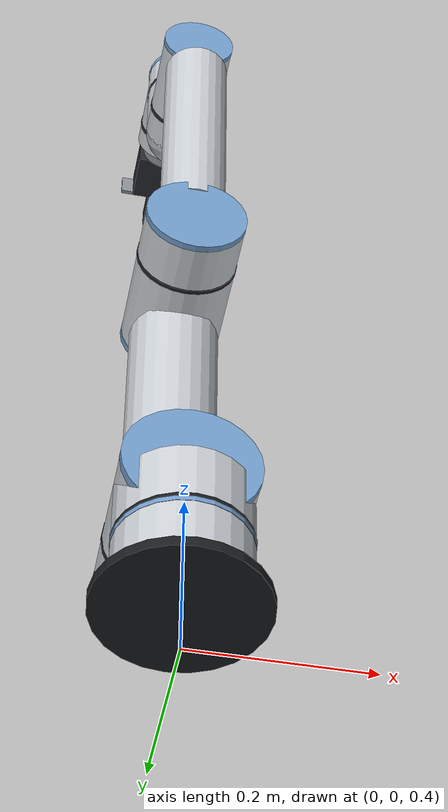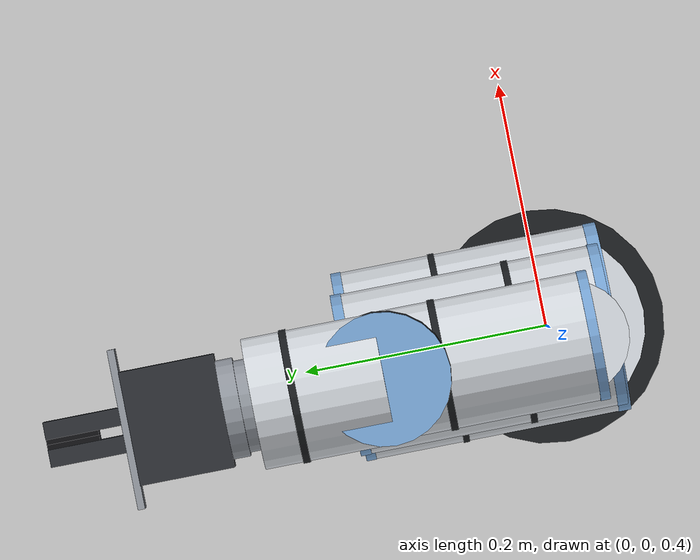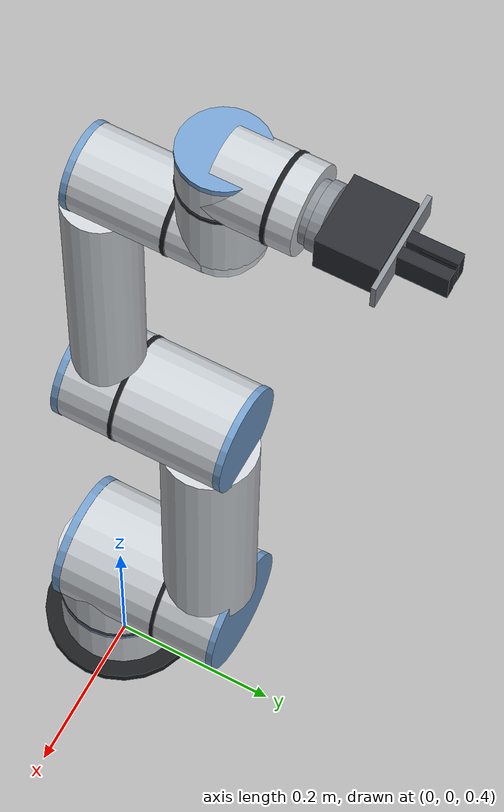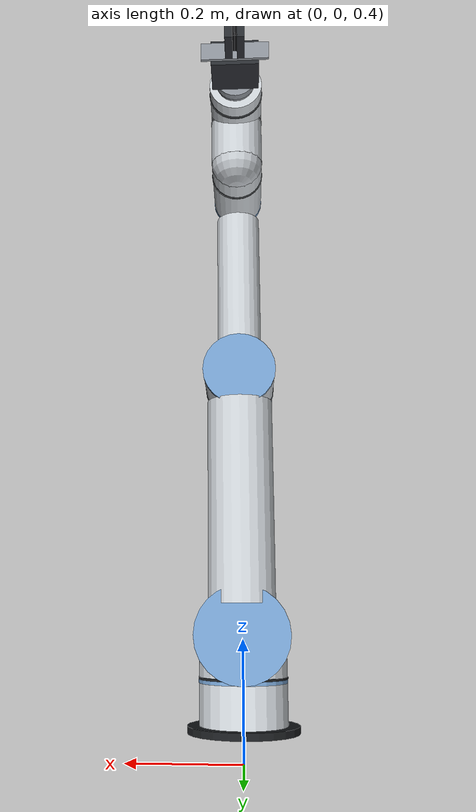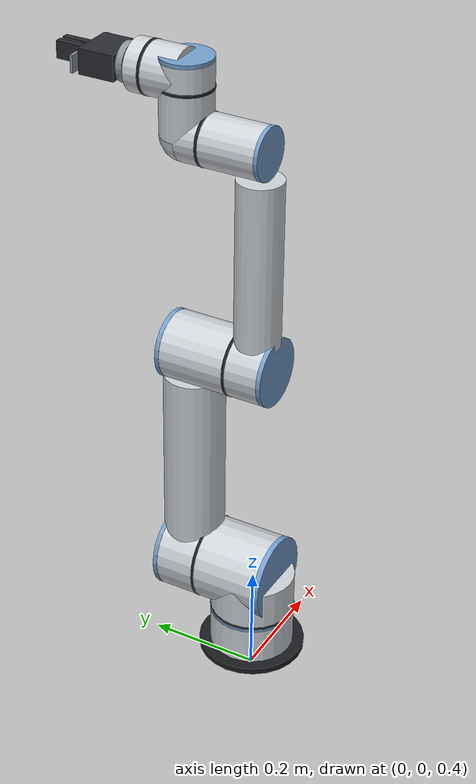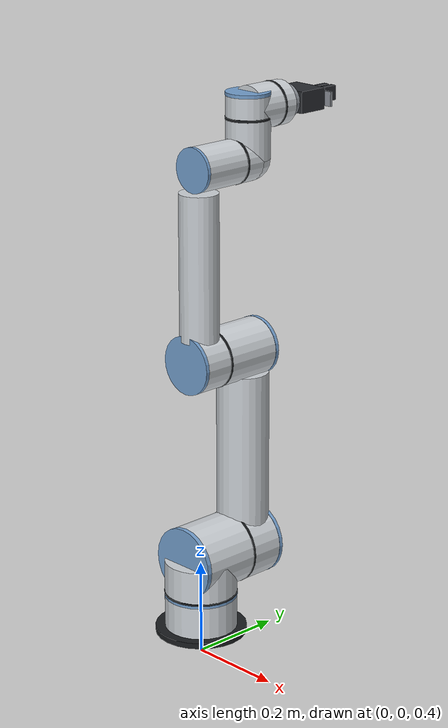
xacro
<?xml version="1.0" encoding="utf-8"?>
<robot name="nora_arm" xmlns:xacro="http://www.ros.org/wiki/xacro">

  <!-- true: Gazebo Classic hardware (gazebo_ros2_control); false: mock hardware -->
  <xacro:arg name="use_gazebo" default="false"/>

  <!-- ===================================================================
       Includes
  ==================================================================== -->
  <xacro:include filename="$(find nora_description)/urdf/materials.xacro"/>
  <xacro:include filename="$(find nora_description)/urdf/ros2_control.xacro"/>

  <!-- Simple diagonal inertia helper -->
  <xacro:macro name="simple_inertia" params="mass ixx iyy izz xyz:='0 0 0'">
    <inertial>
      <origin xyz="${xyz}" rpy="0 0 0"/>
      <mass value="${mass}"/>
      <inertia ixx="${ixx}" ixy="0.0" ixz="0.0"
               iyy="${iyy}" iyz="0.0"
               izz="${izz}"/>
    </inertial>
  </xacro:macro>

  <link name="world"/>

  <joint name="world_to_base" type="fixed">
    <parent link="world"/>
    <child  link="base_link"/>
    <origin xyz="0 0 0.45" rpy="0 0 0"/>
  </joint>

  <link name="base_link">
    <xacro:simple_inertia mass="4.0" ixx="0.0115" iyy="0.0115" izz="0.0181" xyz="0 0 0.043"/>
    <!-- mounting plate -->
    <visual>
      <origin xyz="0 0 0.006" rpy="0 0 0"/>
      <geometry><cylinder radius="0.095" length="0.012"/></geometry>
      <material name="ur_seal"/>
    </visual>
    <!-- base housing -->
    <visual>
      <origin xyz="0 0 0.046" rpy="0 0 0"/>
      <geometry><cylinder radius="0.075" length="0.068"/></geometry>
      <material name="ur_aluminium"/>
    </visual>
    <!-- base joint cap ring -->
    <visual>
      <origin xyz="0 0 0.083" rpy="0 0 0"/>
      <geometry><cylinder radius="0.0755" length="0.006"/></geometry>
      <material name="ur_cap"/>
    </visual>
    <collision>
      <origin xyz="0 0 0.043" rpy="0 0 0"/>
      <geometry><cylinder radius="0.095" length="0.086"/></geometry>
    </collision>
  </link>

  <!-- ===================================================================
       Shoulder pan (link1)
  ==================================================================== -->
  <joint name="joint1" type="revolute">
    <parent link="base_link"/>
    <child  link="link1"/>
    <origin xyz="0 0 0.086" rpy="0 0 0"/>
    <axis xyz="0 0 1"/>
    <limit lower="-6.2832" upper="6.2832" effort="150.0" velocity="3.14"/>
  </joint>

  <link name="link1">
    <xacro:simple_inertia mass="3.761" ixx="0.0126" iyy="0.0126" izz="0.0106" xyz="0 0.01 0.06"/>
    <!-- seal ring between base and shoulder -->
    <visual>
      <origin xyz="0 0 0.002" rpy="0 0 0"/>
      <geometry><cylinder radius="0.076" length="0.004"/></geometry>
      <material name="ur_seal"/>
    </visual>
    <!-- vertical shoulder drum -->
    <visual>
      <origin xyz="0 0 0.0383" rpy="0 0 0"/>
      <geometry><cylinder radius="0.075" length="0.0685"/></geometry>
      <material name="ur_aluminium"/>
    </visual>
    <!-- horizontal shoulder-lift motor drum -->
    <visual>
      <origin xyz="0 0.020 0.0765" rpy="1.5708 0 0"/>
      <geometry><cylinder radius="0.075" length="0.12"/></geometry>
      <material name="ur_aluminium"/>
    </visual>
    <!-- shoulder-lift end cap -->
    <visual>
      <origin xyz="0 -0.045 0.0765" rpy="1.5708 0 0"/>
      <geometry><cylinder radius="0.0755" length="0.010"/></geometry>
      <material name="ur_cap"/>
    </visual>
    <collision>
      <origin xyz="0 0.020 0.0765" rpy="1.5708 0 0"/>
      <geometry><cylinder radius="0.075" length="0.13"/></geometry>
    </collision>
  </link>

  <!-- ===================================================================
       Shoulder lift (link2, upper arm)
  ==================================================================== -->
  <joint name="joint2" type="revolute">
    <parent link="link1"/>
    <child  link="link2"/>
    <origin xyz="0 0 0.0765" rpy="0 0 0"/>
    <axis xyz="0 1 0"/>
    <limit lower="-6.2832" upper="6.2832" effort="150.0" velocity="3.14"/>
  </joint>

  <link name="link2">
    <xacro:simple_inertia mass="8.058" ixx="0.210" iyy="0.210" izz="0.0145" xyz="0 0.120 0.2125"/>
    <!-- seal ring at shoulder -->
    <visual>
      <origin xyz="0 0.0825 0" rpy="1.5708 0 0"/>
      <geometry><cylinder radius="0.076" length="0.005"/></geometry>
      <material name="ur_seal"/>
    </visual>
    <!-- outer shoulder drum -->
    <visual>
      <origin xyz="0 0.120 0" rpy="1.5708 0 0"/>
      <geometry><cylinder radius="0.075" length="0.070"/></geometry>
      <material name="ur_aluminium"/>
    </visual>
    <visual>
      <origin xyz="0 0.159 0" rpy="1.5708 0 0"/>
      <geometry><cylinder radius="0.0755" length="0.008"/></geometry>
      <material name="ur_cap"/>
    </visual>
    <!-- upper arm tube -->
    <visual>
      <origin xyz="0 0.120 0.2125" rpy="0 0 0"/>
      <geometry><cylinder radius="0.054" length="0.33"/></geometry>
      <material name="ur_aluminium"/>
    </visual>
    <!-- elbow drum (outer half) -->
    <visual>
      <origin xyz="0 0.095 0.425" rpy="1.5708 0 0"/>
      <geometry><cylinder radius="0.060" length="0.120"/></geometry>
      <material name="ur_aluminium"/>
    </visual>
    <visual>
      <origin xyz="0 0.159 0.425" rpy="1.5708 0 0"/>
      <geometry><cylinder radius="0.0605" length="0.008"/></geometry>
      <material name="ur_cap"/>
    </visual>
    <collision>
      <origin xyz="0 0.120 0.2125" rpy="0 0 0"/>
      <geometry><cylinder radius="0.06" length="0.55"/></geometry>
    </collision>
  </link>

  <!-- ===================================================================
       Elbow (link3, forearm)
  ==================================================================== -->
  <joint name="joint3" type="revolute">
    <parent link="link2"/>
    <child  link="link3"/>
    <origin xyz="0 0 0.425" rpy="0 0 0"/>
    <axis xyz="0 1 0"/>
    <limit lower="-3.1416" upper="3.1416" effort="150.0" velocity="3.14"/>
  </joint>

  <link name="link3">
    <xacro:simple_inertia mass="2.846" ixx="0.0561" iyy="0.0561" izz="0.00288" xyz="0 0 0.196"/>
    <!-- seal ring at elbow -->
    <visual>
      <origin xyz="0 0.0325 0" rpy="1.5708 0 0"/>
      <geometry><cylinder radius="0.061" length="0.005"/></geometry>
      <material name="ur_seal"/>
    </visual>
    <!-- inner elbow drum -->
    <visual>
      <origin xyz="0 0.0 0" rpy="1.5708 0 0"/>
      <geometry><cylinder radius="0.060" length="0.060"/></geometry>
      <material name="ur_aluminium"/>
    </visual>
    <visual>
      <origin xyz="0 -0.034 0" rpy="1.5708 0 0"/>
      <geometry><cylinder radius="0.0605" length="0.008"/></geometry>
      <material name="ur_cap"/>
    </visual>
    <!-- forearm tube -->
    <visual>
      <origin xyz="0 0 0.196" rpy="0 0 0"/>
      <geometry><cylinder radius="0.040" length="0.30"/></geometry>
      <material name="ur_aluminium"/>
    </visual>
    <!-- wrist 1 drum (inner half) -->
    <visual>
      <origin xyz="0 0.040 0.3922" rpy="1.5708 0 0"/>
      <geometry><cylinder radius="0.045" length="0.100"/></geometry>
      <material name="ur_aluminium"/>
    </visual>
    <visual>
      <origin xyz="0 -0.0135 0.3922" rpy="1.5708 0 0"/>
      <geometry><cylinder radius="0.0455" length="0.007"/></geometry>
      <material name="ur_cap"/>
    </visual>
    <collision>
      <origin xyz="0 0 0.196" rpy="0 0 0"/>
      <geometry><cylinder radius="0.045" length="0.48"/></geometry>
    </collision>
  </link>

  <!-- ===================================================================
       Wrist 1 (link4)
  ==================================================================== -->
  <joint name="joint4" type="revolute">
    <parent link="link3"/>
    <child  link="link4"/>
    <origin xyz="0 0 0.3922" rpy="0 0 0"/>
    <axis xyz="0 1 0"/>
    <limit lower="-6.2832" upper="6.2832" effort="28.0" velocity="3.14"/>
  </joint>

  <link name="link4">
    <xacro:simple_inertia mass="1.37" ixx="0.00326" iyy="0.00139" izz="0.00326" xyz="0 0.11 0.02"/>
    <visual>
      <origin xyz="0 0.0925 0" rpy="1.5708 0 0"/>
      <geometry><cylinder radius="0.046" length="0.005"/></geometry>
      <material name="ur_seal"/>
    </visual>
    <!-- outer wrist 1 drum -->
    <visual>
      <origin xyz="0 0.1140 0" rpy="1.5708 0 0"/>
      <geometry><cylinder radius="0.045" length="0.039"/></geometry>
      <material name="ur_aluminium"/>
    </visual>
    <!-- rounded elbow of the L-shaped wrist housing -->
    <visual>
      <origin xyz="0 0.1333 0" rpy="0 0 0"/>
      <geometry><sphere radius="0.045"/></geometry>
      <material name="ur_aluminium"/>
    </visual>
    <!-- riser toward wrist 2 -->
    <visual>
      <origin xyz="0 0.1333 0.040" rpy="0 0 0"/>
      <geometry><cylinder radius="0.045" length="0.080"/></geometry>
      <material name="ur_aluminium"/>
    </visual>
    <collision>
      <origin xyz="0 0.1333 0.040" rpy="0 0 0"/>
      <geometry><cylinder radius="0.045" length="0.10"/></geometry>
    </collision>
  </link>

  <!-- ===================================================================
       Wrist 2 (link5)
  ==================================================================== -->
  <joint name="joint5" type="revolute">
    <parent link="link4"/>
    <child  link="link5"/>
    <origin xyz="0 0.1333 0.0997" rpy="0 0 0"/>
    <axis xyz="0 0 1"/>
    <limit lower="-6.2832" upper="6.2832" effort="28.0" velocity="3.14"/>
  </joint>

  <link name="link5">
    <xacro:simple_inertia mass="1.3" ixx="0.00154" iyy="0.00132" izz="0.00154" xyz="0 0.02 0"/>
    <visual>
      <origin xyz="0 0 -0.0175" rpy="0 0 0"/>
      <geometry><cylinder radius="0.046" length="0.005"/></geometry>
      <material name="ur_seal"/>
    </visual>
    <!-- wrist 2 drum -->
    <visual>
      <origin xyz="0 0 0.006" rpy="0 0 0"/>
      <geometry><cylinder radius="0.045" length="0.042"/></geometry>
      <material name="ur_aluminium"/>
    </visual>
    <visual>
      <origin xyz="0 0 0.0305" rpy="0 0 0"/>
      <geometry><cylinder radius="0.0455" length="0.007"/></geometry>
      <material name="ur_cap"/>
    </visual>
    <!-- branch toward wrist 3 -->
    <visual>
      <origin xyz="0 0.030 0" rpy="1.5708 0 0"/>
      <geometry><cylinder radius="0.045" length="0.060"/></geometry>
      <material name="ur_aluminium"/>
    </visual>
    <collision>
      <origin xyz="0 0.030 0" rpy="1.5708 0 0"/>
      <geometry><cylinder radius="0.045" length="0.09"/></geometry>
    </collision>
  </link>

  <!-- ===================================================================
       Wrist 3 / tool flange (link6)
  ==================================================================== -->
  <joint name="joint6" type="revolute">
    <parent link="link5"/>
    <child  link="link6"/>
    <origin xyz="0 0.0596 0" rpy="-1.5708 0 0"/>
    <axis xyz="0 0 1"/>
    <limit lower="-6.2832" upper="6.2832" effort="28.0" velocity="3.14"/>
  </joint>

  <link name="link6">
    <xacro:simple_inertia mass="0.365" ixx="0.000233" iyy="0.000233" izz="0.000370" xyz="0 0 0.02"/>
    <visual>
      <origin xyz="0 0 0.0025" rpy="0 0 0"/>
      <geometry><cylinder radius="0.046" length="0.005"/></geometry>
      <material name="ur_seal"/>
    </visual>
    <visual>
      <origin xyz="0 0 0.018" rpy="0 0 0"/>
      <geometry><cylinder radius="0.045" length="0.026"/></geometry>
      <material name="ur_aluminium"/>
    </visual>
    <!-- ISO tool flange -->
    <visual>
      <origin xyz="0 0 0.035" rpy="0 0 0"/>
      <geometry><cylinder radius="0.0315" length="0.008"/></geometry>
      <material name="steel"/>
    </visual>
    <collision>
      <origin xyz="0 0 0.02" rpy="0 0 0"/>
      <geometry><cylinder radius="0.045" length="0.04"/></geometry>
    </collision>
  </link>

  <!-- ===================================================================
       Parallel-jaw gripper
  ==================================================================== -->
  <joint name="gripper_mount_joint" type="fixed">
    <parent link="link6"/>
    <child  link="gripper_link"/>
    <origin xyz="0 0 0.039" rpy="0 0 0"/>
  </joint>

  <link name="gripper_link">
    <xacro:simple_inertia mass="0.925" ixx="0.000643" iyy="0.00143" izz="0.00108" xyz="0 0 0.045"/>
    <!-- coupling -->
    <visual>
      <origin xyz="0 0 0.006" rpy="0 0 0"/>
      <geometry><cylinder radius="0.034" length="0.012"/></geometry>
      <material name="steel"/>
    </visual>
    <!-- gripper body -->
    <visual>
      <origin xyz="0 0 0.0445" rpy="0 0 0"/>
      <geometry><box size="0.078 0.044 0.065"/></geometry>
      <material name="gripper_body"/>
    </visual>
    <!-- finger guide rail -->
    <visual>
      <origin xyz="0 0 0.0795" rpy="0 0 0"/>
      <geometry><box size="0.110 0.030 0.005"/></geometry>
      <material name="steel"/>
    </visual>
    <collision>
      <origin xyz="0 0 0.040" rpy="0 0 0"/>
      <geometry><box size="0.11 0.044 0.08"/></geometry>
    </collision>
  </link>

  <!-- Tool centre point, between the finger pads -->
  <joint name="tcp_joint" type="fixed">
    <parent link="gripper_link"/>
    <child  link="tcp"/>
    <origin xyz="0 0 0.115" rpy="0 0 0"/>
  </joint>
  <link name="tcp"/>

  <!-- Driver joint: value = total opening stroke. Fingers mimic it. -->
  <joint name="gripper_joint" type="prismatic">
    <parent link="gripper_link"/>
    <child  link="gripper_driver_link"/>
    <origin xyz="0 0 0.08" rpy="0 0 0"/>
    <axis xyz="1 0 0"/>
    <limit lower="0.0" upper="0.085" effort="50.0" velocity="0.15"/>
  </joint>

  <link name="gripper_driver_link">
    <xacro:simple_inertia mass="0.01" ixx="1.0e-6" iyy="1.0e-6" izz="1.0e-6"/>
  </link>

  <joint name="left_finger_joint" type="prismatic">
    <parent link="gripper_link"/>
    <child  link="left_finger_link"/>
    <origin xyz="-0.0055 0 0.082" rpy="0 0 0"/>
    <axis xyz="1 0 0"/>
    <limit lower="-0.05" upper="0.0" effort="50.0" velocity="0.15"/>
    <mimic joint="gripper_joint" multiplier="-0.5" offset="0"/>
  </joint>

  <link name="left_finger_link">
    <xacro:simple_inertia mass="0.05" ixx="1.5e-5" iyy="1.23e-5" izz="4.82e-6" xyz="0 0 0.026"/>
    <visual>
      <origin xyz="-0.004 0 0.026" rpy="0 0 0"/>
      <geometry><box size="0.012 0.030 0.052"/></geometry>
      <material name="gripper_body"/>
    </visual>
    <visual>
      <origin xyz="0.0035 0 0.034" rpy="0 0 0"/>
      <geometry><box size="0.004 0.026 0.036"/></geometry>
      <material name="gripper_pad"/>
    </visual>
    <collision>
      <origin xyz="0 0 0.026" rpy="0 0 0"/>
      <geometry><box size="0.016 0.030 0.052"/></geometry>
    </collision>
  </link>

  <joint name="right_finger_joint" type="prismatic">
    <parent link="gripper_link"/>
    <child  link="right_finger_link"/>
    <origin xyz="0.0055 0 0.082" rpy="0 0 0"/>
    <axis xyz="1 0 0"/>
    <limit lower="0.0" upper="0.05" effort="50.0" velocity="0.15"/>
    <mimic joint="gripper_joint" multiplier="0.5" offset="0"/>
  </joint>

  <link name="right_finger_link">
    <xacro:simple_inertia mass="0.05" ixx="1.5e-5" iyy="1.23e-5" izz="4.82e-6" xyz="0 0 0.026"/>
    <visual>
      <origin xyz="0.004 0 0.026" rpy="0 0 0"/>
      <geometry><box size="0.012 0.030 0.052"/></geometry>
      <material name="gripper_body"/>
    </visual>
    <visual>
      <origin xyz="-0.0035 0 0.034" rpy="0 0 0"/>
      <geometry><box size="0.004 0.026 0.036"/></geometry>
      <material name="gripper_pad"/>
    </visual>
    <collision>
      <origin xyz="0 0 0.026" rpy="0 0 0"/>
      <geometry><box size="0.016 0.030 0.052"/></geometry>
    </collision>
  </link>

  <xacro:nora_ros2_control name="NorArmSystem" use_gazebo="$(arg use_gazebo)"/>

</robot>

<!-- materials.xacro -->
<!--
  materials.xacro — shared material definitions for the NORA / UR5e arm.
  Include this file at the top of any xacro that needs arm materials.
-->
<robot xmlns:xacro="http://www.ros.org/wiki/xacro">

  <!-- Universal Robots classic blue -->
  <material name="ur_blue">
    <color rgba="0.18 0.38 0.60 1.0"/>
  </material>

  <!-- Universal Robots metallic grey body -->
  <material name="ur_grey">
    <color rgba="0.78 0.78 0.80 1.0"/>
  </material>

  <!-- Universal Robots joint collar dark grey -->
  <material name="ur_dark">
    <color rgba="0.22 0.22 0.25 1.0"/>
  </material>

  <!-- Silver / metallic links -->
  <material name="silver">
    <color rgba="0.75 0.75 0.75 1.0"/>
  </material>

  <!-- Dark grey structural parts -->
  <material name="dark_grey">
    <color rgba="0.2 0.2 0.2 1.0"/>
  </material>

  <!-- Orange gripper accent -->
  <material name="orange">
    <color rgba="1.0 0.45 0.0 1.0"/>
  </material>

  <!-- White for labels / sensors -->
  <material name="white">
    <color rgba="1.0 1.0 1.0 1.0"/>
  </material>

  <!-- Arm and gripper colours, same as the web simulator's nora_arm.urdf -->
  <material name="ur_aluminium"><color rgba="0.80 0.82 0.84 1.0"/></material>
  <material name="ur_cap"><color rgba="0.45 0.62 0.80 1.0"/></material>
  <material name="ur_seal"><color rgba="0.10 0.11 0.12 1.0"/></material>
  <material name="steel"><color rgba="0.55 0.57 0.60 1.0"/></material>
  <material name="gripper_body"><color rgba="0.16 0.17 0.19 1.0"/></material>
  <material name="gripper_pad"><color rgba="0.06 0.06 0.07 1.0"/></material>

</robot>
